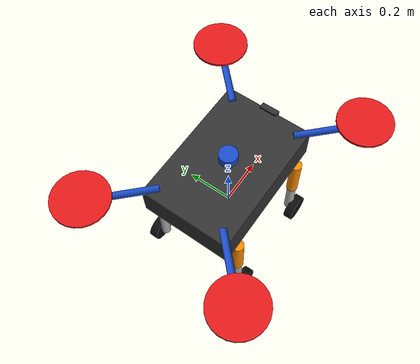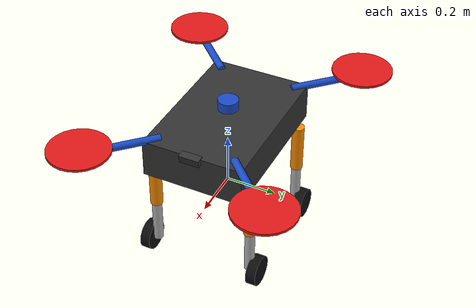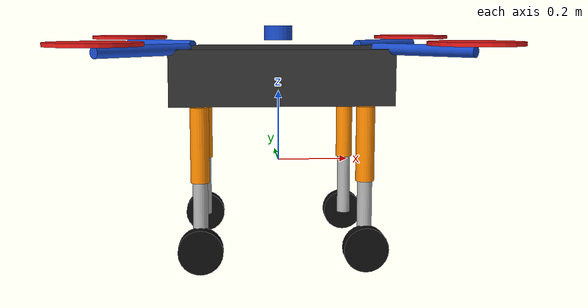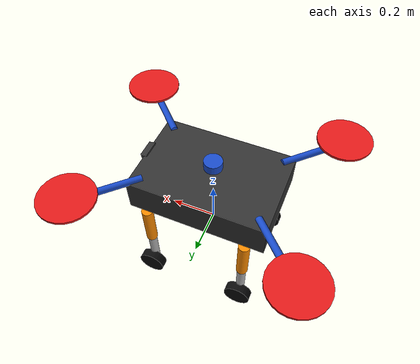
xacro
<?xml version="1.0"?>
<robot xmlns:xacro="http://www.ros.org/wiki/xacro" name="aeroterrabot">

  <!-- ===================== PROPERTIES ===================== -->
  <xacro:property name="chassis_mass" value="12.0"/>
  <xacro:property name="chassis_length" value="0.6"/>
  <xacro:property name="chassis_width" value="0.4"/>
  <xacro:property name="chassis_height" value="0.15"/>

  <xacro:property name="upper_leg_mass" value="0.8"/>
  <xacro:property name="upper_leg_length" value="0.20"/>
  <xacro:property name="upper_leg_radius" value="0.025"/>

  <xacro:property name="lower_leg_mass" value="0.6"/>
  <xacro:property name="lower_leg_length" value="0.18"/>
  <xacro:property name="lower_leg_radius" value="0.02"/>

  <xacro:property name="wheel_mass" value="0.5"/>
  <xacro:property name="wheel_radius" value="0.06"/>
  <xacro:property name="wheel_width" value="0.04"/>

  <xacro:property name="arm_mass" value="0.4"/>
  <xacro:property name="arm_length" value="0.30"/>
  <xacro:property name="arm_radius" value="0.015"/>

  <xacro:property name="rotor_mass" value="0.15"/>
  <xacro:property name="rotor_radius" value="0.12"/>
  <xacro:property name="rotor_thickness" value="0.01"/>

  <!-- ===================== MATERIALS ===================== -->
  <material name="dark_grey">
    <color rgba="0.2 0.2 0.2 1.0"/>
  </material>
  <material name="orange">
    <color rgba="1.0 0.55 0.0 1.0"/>
  </material>
  <material name="light_grey">
    <color rgba="0.7 0.7 0.7 1.0"/>
  </material>
  <material name="blue">
    <color rgba="0.1 0.3 0.8 1.0"/>
  </material>
  <material name="black">
    <color rgba="0.05 0.05 0.05 1.0"/>
  </material>
  <material name="red">
    <color rgba="0.9 0.1 0.1 1.0"/>
  </material>

  <!-- ===================== INERTIA MACROS ===================== -->
  <xacro:macro name="box_inertia" params="m x y z">
    <inertial>
      <mass value="${m}"/>
      <inertia ixx="${(m/12.0)*(y*y+z*z)}" ixy="0" ixz="0"
               iyy="${(m/12.0)*(x*x+z*z)}" iyz="0"
               izz="${(m/12.0)*(x*x+y*y)}"/>
    </inertial>
  </xacro:macro>

  <xacro:macro name="cylinder_inertia" params="m r h">
    <inertial>
      <mass value="${m}"/>
      <inertia ixx="${(m/12.0)*(3*r*r+h*h)}" ixy="0" ixz="0"
               iyy="${(m/12.0)*(3*r*r+h*h)}" iyz="0"
               izz="${(m/2.0)*(r*r)}"/>
    </inertial>
  </xacro:macro>

  <xacro:macro name="sphere_inertia" params="m r">
    <inertial>
      <mass value="${m}"/>
      <inertia ixx="${(2.0/5.0)*m*r*r}" ixy="0" ixz="0"
               iyy="${(2.0/5.0)*m*r*r}" iyz="0"
               izz="${(2.0/5.0)*m*r*r}"/>
    </inertial>
  </xacro:macro>

  <!-- ===================== BASE LINK ===================== -->
  <link name="base_footprint"/>

  <link name="base_link">
    <visual>
      <geometry>
        <box size="${chassis_length} ${chassis_width} ${chassis_height}"/>
      </geometry>
      <material name="dark_grey"/>
    </visual>
    <collision>
      <geometry>
        <box size="${chassis_length} ${chassis_width} ${chassis_height}"/>
      </geometry>
    </collision>
    <xacro:box_inertia m="${chassis_mass}" x="${chassis_length}" y="${chassis_width}" z="${chassis_height}"/>
  </link>

  <joint name="base_footprint_joint" type="fixed">
    <parent link="base_footprint"/>
    <child link="base_link"/>
    <origin xyz="0 0 0.25" rpy="0 0 0"/>
  </joint>

  <!-- ===================== LEG + WHEEL MACRO ===================== -->
  <xacro:macro name="leg_wheel_module" params="prefix x_offset y_offset y_sign">
    <!-- Upper Leg -->
    <link name="${prefix}_upper_leg_link">
      <visual>
        <origin xyz="0 0 ${-upper_leg_length/2.0}" rpy="0 0 0"/>
        <geometry>
          <cylinder radius="${upper_leg_radius}" length="${upper_leg_length}"/>
        </geometry>
        <material name="orange"/>
      </visual>
      <collision>
        <origin xyz="0 0 ${-upper_leg_length/2.0}" rpy="0 0 0"/>
        <geometry>
          <cylinder radius="${upper_leg_radius}" length="${upper_leg_length}"/>
        </geometry>
      </collision>
      <xacro:cylinder_inertia m="${upper_leg_mass}" r="${upper_leg_radius}" h="${upper_leg_length}"/>
    </link>

    <joint name="${prefix}_upper_leg_joint" type="revolute">
      <parent link="base_link"/>
      <child link="${prefix}_upper_leg_link"/>
      <origin xyz="${x_offset} ${y_offset} ${-chassis_height/2.0}" rpy="0 0 0"/>
      <axis xyz="0 1 0"/>
      <limit lower="-1.57" upper="1.57" effort="50.0" velocity="2.0"/>
      <dynamics damping="0.5" friction="0.3"/>
    </joint>

    <!-- Lower Leg -->
    <link name="${prefix}_lower_leg_link">
      <visual>
        <origin xyz="0 0 ${-lower_leg_length/2.0}" rpy="0 0 0"/>
        <geometry>
          <cylinder radius="${lower_leg_radius}" length="${lower_leg_length}"/>
        </geometry>
        <material name="light_grey"/>
      </visual>
      <collision>
        <origin xyz="0 0 ${-lower_leg_length/2.0}" rpy="0 0 0"/>
        <geometry>
          <cylinder radius="${lower_leg_radius}" length="${lower_leg_length}"/>
        </geometry>
      </collision>
      <xacro:cylinder_inertia m="${lower_leg_mass}" r="${lower_leg_radius}" h="${lower_leg_length}"/>
    </link>

    <joint name="${prefix}_lower_leg_joint" type="revolute">
      <parent link="${prefix}_upper_leg_link"/>
      <child link="${prefix}_lower_leg_link"/>
      <origin xyz="0 0 ${-upper_leg_length}" rpy="0 0 0"/>
      <axis xyz="0 1 0"/>
      <limit lower="-2.35" upper="0.0" effort="40.0" velocity="2.0"/>
      <dynamics damping="0.3" friction="0.2"/>
    </joint>

    <!-- Wheel -->
    <link name="${prefix}_wheel_link">
      <visual>
        <geometry>
          <cylinder radius="${wheel_radius}" length="${wheel_width}"/>
        </geometry>
        <material name="black"/>
      </visual>
      <collision>
        <geometry>
          <cylinder radius="${wheel_radius}" length="${wheel_width}"/>
        </geometry>
      </collision>
      <xacro:cylinder_inertia m="${wheel_mass}" r="${wheel_radius}" h="${wheel_width}"/>
    </link>

    <joint name="${prefix}_wheel_joint" type="continuous">
      <parent link="${prefix}_lower_leg_link"/>
      <child link="${prefix}_wheel_link"/>
      <origin xyz="0 ${y_sign * 0.03} ${-lower_leg_length}" rpy="${-pi/2.0} 0 0"/>
      <axis xyz="0 0 1"/>
      <dynamics damping="0.1" friction="0.05"/>
    </joint>
  </xacro:macro>

  <!-- Instantiate 4 leg-wheel modules -->
  <xacro:leg_wheel_module prefix="fl" x_offset="${chassis_length/2.0 - 0.08}" y_offset="${chassis_width/2.0}"  y_sign="1"/>
  <xacro:leg_wheel_module prefix="fr" x_offset="${chassis_length/2.0 - 0.08}" y_offset="${-chassis_width/2.0}" y_sign="-1"/>
  <xacro:leg_wheel_module prefix="rl" x_offset="${-chassis_length/2.0 + 0.08}" y_offset="${chassis_width/2.0}"  y_sign="1"/>
  <xacro:leg_wheel_module prefix="rr" x_offset="${-chassis_length/2.0 + 0.08}" y_offset="${-chassis_width/2.0}" y_sign="-1"/>

  <!-- ===================== QUADROTOR ARM + ROTOR MACRO ===================== -->
  <xacro:macro name="rotor_arm_module" params="prefix rotor_id x_offset y_offset yaw_offset">
    <!-- Folding Arm -->
    <link name="${prefix}_arm_link">
      <visual>
        <origin xyz="${arm_length/2.0} 0 0" rpy="0 ${pi/2.0} 0"/>
        <geometry>
          <cylinder radius="${arm_radius}" length="${arm_length}"/>
        </geometry>
        <material name="blue"/>
      </visual>
      <collision>
        <origin xyz="${arm_length/2.0} 0 0" rpy="0 ${pi/2.0} 0"/>
        <geometry>
          <cylinder radius="${arm_radius}" length="${arm_length}"/>
        </geometry>
      </collision>
      <xacro:cylinder_inertia m="${arm_mass}" r="${arm_radius}" h="${arm_length}"/>
    </link>

    <joint name="${prefix}_arm_joint" type="revolute">
      <parent link="base_link"/>
      <child link="${prefix}_arm_link"/>
      <origin xyz="${x_offset} ${y_offset} ${chassis_height/2.0}" rpy="0 0 ${yaw_offset}"/>
      <axis xyz="0 0 1"/>
      <limit lower="0.0" upper="1.57" effort="30.0" velocity="1.5"/>
      <dynamics damping="0.3" friction="0.1"/>
    </joint>

    <!-- Rotor -->
    <link name="rotor_${rotor_id}_link">
      <visual>
        <geometry>
          <cylinder radius="${rotor_radius}" length="${rotor_thickness}"/>
        </geometry>
        <material name="red"/>
      </visual>
      <collision>
        <geometry>
          <cylinder radius="${rotor_radius}" length="${rotor_thickness}"/>
        </geometry>
      </collision>
      <xacro:cylinder_inertia m="${rotor_mass}" r="${rotor_radius}" h="${rotor_thickness}"/>
    </link>

    <joint name="rotor_${rotor_id}_joint" type="continuous">
      <parent link="${prefix}_arm_link"/>
      <child link="rotor_${rotor_id}_link"/>
      <origin xyz="${arm_length} 0 ${rotor_thickness + 0.01}" rpy="0 0 0"/>
      <axis xyz="0 0 1"/>
      <dynamics damping="0.01" friction="0.005"/>
    </joint>
  </xacro:macro>

  <!-- Instantiate 4 rotor arm modules -->
  <xacro:rotor_arm_module prefix="front_left"  rotor_id="1" x_offset="${chassis_length/2.0 - 0.05}" y_offset="${chassis_width/2.0 - 0.05}"  yaw_offset="0.785"/>
  <xacro:rotor_arm_module prefix="front_right" rotor_id="2" x_offset="${chassis_length/2.0 - 0.05}" y_offset="${-chassis_width/2.0 + 0.05}" yaw_offset="-0.785"/>
  <xacro:rotor_arm_module prefix="rear_left"   rotor_id="3" x_offset="${-chassis_length/2.0 + 0.05}" y_offset="${chassis_width/2.0 - 0.05}"  yaw_offset="2.356"/>
  <xacro:rotor_arm_module prefix="rear_right"  rotor_id="4" x_offset="${-chassis_length/2.0 + 0.05}" y_offset="${-chassis_width/2.0 + 0.05}" yaw_offset="-2.356"/>

  <!-- ===================== SENSORS ===================== -->

  <!-- LiDAR -->
  <link name="lidar_link">
    <visual>
      <geometry>
        <cylinder radius="0.04" length="0.04"/>
      </geometry>
      <material name="blue"/>
    </visual>
    <collision>
      <geometry>
        <cylinder radius="0.04" length="0.04"/>
      </geometry>
    </collision>
    <xacro:cylinder_inertia m="0.2" r="0.04" h="0.04"/>
  </link>

  <joint name="lidar_joint" type="fixed">
    <parent link="base_link"/>
    <child link="lidar_link"/>
    <origin xyz="0 0 ${chassis_height/2.0 + 0.04}" rpy="0 0 0"/>
  </joint>

  <!-- Camera -->
  <link name="camera_link">
    <visual>
      <origin xyz="0 0 0" rpy="0 0 0"/>
      <geometry>
        <box size="0.03 0.08 0.03"/>
      </geometry>
      <material name="dark_grey"/>
    </visual>
    <collision>
      <geometry>
        <box size="0.03 0.08 0.03"/>
      </geometry>
    </collision>
    <xacro:box_inertia m="0.1" x="0.03" y="0.08" z="0.03"/>
  </link>

  <joint name="camera_joint" type="fixed">
    <parent link="base_link"/>
    <child link="camera_link"/>
    <origin xyz="${chassis_length/2.0} 0 ${chassis_height/2.0 - 0.01}" rpy="0 0.18 0"/>
  </joint>

  <link name="camera_optical_link"/>
  <joint name="camera_optical_joint" type="fixed">
    <parent link="camera_link"/>
    <child link="camera_optical_link"/>
    <origin xyz="0 0 0" rpy="${-pi/2.0} 0 ${-pi/2.0}"/>
  </joint>

  <!-- IMU -->
  <link name="imu_link">
    <visual>
      <geometry>
        <box size="0.02 0.02 0.01"/>
      </geometry>
      <material name="orange"/>
    </visual>
    <collision>
      <geometry>
        <box size="0.02 0.02 0.01"/>
      </geometry>
    </collision>
    <xacro:box_inertia m="0.05" x="0.02" y="0.02" z="0.01"/>
  </link>

  <joint name="imu_joint" type="fixed">
    <parent link="base_link"/>
    <child link="imu_link"/>
    <origin xyz="0 0 0" rpy="0 0 0"/>
  </joint>

  <!-- ===================== GAZEBO SENSOR PLUGINS ===================== -->
  <gazebo reference="lidar_link">
    <sensor type="ray" name="lidar_sensor">
      <pose>0 0 0 0 0 0</pose>
      <always_on>true</always_on>
      <update_rate>10</update_rate>
      <visualize>true</visualize>
      <ray>
        <scan>
          <horizontal>
            <samples>360</samples>
            <resolution>1</resolution>
            <min_angle>-3.14159</min_angle>
            <max_angle>3.14159</max_angle>
          </horizontal>
        </scan>
        <range>
          <min>0.12</min>
          <max>12.0</max>
          <resolution>0.01</resolution>
        </range>
        <noise>
          <type>gaussian</type>
          <mean>0.0</mean>
          <stddev>0.01</stddev>
        </noise>
      </ray>
      <plugin name="gazebo_ros_lidar" filename="libgazebo_ros_ray_sensor.so">
        <ros>
          <remapping>~/out:=/scan</remapping>
        </ros>
        <output_type>sensor_msgs/LaserScan</output_type>
        <frame_name>lidar_link</frame_name>
      </plugin>
    </sensor>
  </gazebo>

  <gazebo reference="camera_link">
    <sensor type="camera" name="camera_sensor">
      <always_on>true</always_on>
      <update_rate>30</update_rate>
      <visualize>true</visualize>
      <camera>
        <horizontal_fov>1.3962634</horizontal_fov>
        <image>
          <width>640</width>
          <height>480</height>
          <format>R8G8B8</format>
        </image>
        <clip>
          <near>0.02</near>
          <far>100.0</far>
        </clip>
        <noise>
          <type>gaussian</type>
          <mean>0.0</mean>
          <stddev>0.007</stddev>
        </noise>
      </camera>
      <plugin name="gazebo_ros_camera" filename="libgazebo_ros_camera.so">
        <ros>
          <remapping>~/image_raw:=/camera/image_raw</remapping>
          <remapping>~/camera_info:=/camera/camera_info</remapping>
        </ros>
        <camera_name>camera</camera_name>
        <frame_name>camera_optical_link</frame_name>
      </plugin>
    </sensor>
  </gazebo>

  <gazebo reference="imu_link">
    <sensor type="imu" name="imu_sensor">
      <always_on>true</always_on>
      <update_rate>100</update_rate>
      <imu>
        <angular_velocity>
          <x><noise type="gaussian"><mean>0.0</mean><stddev>0.0002</stddev></noise></x>
          <y><noise type="gaussian"><mean>0.0</mean><stddev>0.0002</stddev></noise></y>
          <z><noise type="gaussian"><mean>0.0</mean><stddev>0.0002</stddev></noise></z>
        </angular_velocity>
        <linear_acceleration>
          <x><noise type="gaussian"><mean>0.0</mean><stddev>0.017</stddev></noise></x>
          <y><noise type="gaussian"><mean>0.0</mean><stddev>0.017</stddev></noise></y>
          <z><noise type="gaussian"><mean>0.0</mean><stddev>0.017</stddev></noise></z>
        </linear_acceleration>
      </imu>
      <plugin name="gazebo_ros_imu" filename="libgazebo_ros_imu_sensor.so">
        <ros>
          <remapping>~/out:=/imu/data</remapping>
        </ros>
        <frame_name>imu_link</frame_name>
        <initial_orientation_as_reference>false</initial_orientation_as_reference>
      </plugin>
    </sensor>
  </gazebo>

  <!-- Gazebo friction for wheels -->
  <xacro:macro name="wheel_gazebo" params="prefix">
    <gazebo reference="${prefix}_wheel_link">
      <mu1>1.5</mu1>
      <mu2>1.5</mu2>
      <kp>1000000.0</kp>
      <kd>100.0</kd>
      <material>Gazebo/DarkGrey</material>
    </gazebo>
  </xacro:macro>

  <xacro:wheel_gazebo prefix="fl"/>
  <xacro:wheel_gazebo prefix="fr"/>
  <xacro:wheel_gazebo prefix="rl"/>
  <xacro:wheel_gazebo prefix="rr"/>

  <!-- ===================== ROS2_CONTROL HARDWARE INTERFACE ===================== -->
  <ros2_control name="AeroTerraBotSystem" type="system">
    <hardware>
      <plugin>gazebo_ros2_control/GazeboSystem</plugin>
    </hardware>

    <!-- Wheel Joints - Velocity Interface -->
    <joint name="fl_wheel_joint">
      <command_interface name="velocity">
        <param name="min">-20.0</param>
        <param name="max">20.0</param>
      </command_interface>
      <state_interface name="position"/>
      <state_interface name="velocity"/>
    </joint>
    <joint name="fr_wheel_joint">
      <command_interface name="velocity">
        <param name="min">-20.0</param>
        <param name="max">20.0</param>
      </command_interface>
      <state_interface name="position"/>
      <state_interface name="velocity"/>
    </joint>
    <joint name="rl_wheel_joint">
      <command_interface name="velocity">
        <param name="min">-20.0</param>
        <param name="max">20.0</param>
      </command_interface>
      <state_interface name="position"/>
      <state_interface name="velocity"/>
    </joint>
    <joint name="rr_wheel_joint">
      <command_interface name="velocity">
        <param name="min">-20.0</param>
        <param name="max">20.0</param>
      </command_interface>
      <state_interface name="position"/>
      <state_interface name="velocity"/>
    </joint>

    <!-- Upper Leg Joints - Position Interface -->
    <joint name="fl_upper_leg_joint">
      <command_interface name="position">
        <param name="min">-1.57</param>
        <param name="max">1.57</param>
      </command_interface>
      <state_interface name="position"/>
      <state_interface name="velocity"/>
    </joint>
    <joint name="fr_upper_leg_joint">
      <command_interface name="position">
        <param name="min">-1.57</param>
        <param name="max">1.57</param>
      </command_interface>
      <state_interface name="position"/>
      <state_interface name="velocity"/>
    </joint>
    <joint name="rl_upper_leg_joint">
      <command_interface name="position">
        <param name="min">-1.57</param>
        <param name="max">1.57</param>
      </command_interface>
      <state_interface name="position"/>
      <state_interface name="velocity"/>
    </joint>
    <joint name="rr_upper_leg_joint">
      <command_interface name="position">
        <param name="min">-1.57</param>
        <param name="max">1.57</param>
      </command_interface>
      <state_interface name="position"/>
      <state_interface name="velocity"/>
    </joint>

    <!-- Lower Leg Joints - Position Interface -->
    <joint name="fl_lower_leg_joint">
      <command_interface name="position">
        <param name="min">-2.35</param>
        <param name="max">0.0</param>
      </command_interface>
      <state_interface name="position"/>
      <state_interface name="velocity"/>
    </joint>
    <joint name="fr_lower_leg_joint">
      <command_interface name="position">
        <param name="min">-2.35</param>
        <param name="max">0.0</param>
      </command_interface>
      <state_interface name="position"/>
      <state_interface name="velocity"/>
    </joint>
    <joint name="rl_lower_leg_joint">
      <command_interface name="position">
        <param name="min">-2.35</param>
        <param name="max">0.0</param>
      </command_interface>
      <state_interface name="position"/>
      <state_interface name="velocity"/>
    </joint>
    <joint name="rr_lower_leg_joint">
      <command_interface name="position">
        <param name="min">-2.35</param>
        <param name="max">0.0</param>
      </command_interface>
      <state_interface name="position"/>
      <state_interface name="velocity"/>
    </joint>

    <!-- Arm Transform Joints - Position Interface -->
    <joint name="front_left_arm_joint">
      <command_interface name="position">
        <param name="min">0.0</param>
        <param name="max">1.57</param>
      </command_interface>
      <state_interface name="position"/>
      <state_interface name="velocity"/>
    </joint>
    <joint name="front_right_arm_joint">
      <command_interface name="position">
        <param name="min">0.0</param>
        <param name="max">1.57</param>
      </command_interface>
      <state_interface name="position"/>
      <state_interface name="velocity"/>
    </joint>
    <joint name="rear_left_arm_joint">
      <command_interface name="position">
        <param name="min">0.0</param>
        <param name="max">1.57</param>
      </command_interface>
      <state_interface name="position"/>
      <state_interface name="velocity"/>
    </joint>
    <joint name="rear_right_arm_joint">
      <command_interface name="position">
        <param name="min">0.0</param>
        <param name="max">1.57</param>
      </command_interface>
      <state_interface name="position"/>
      <state_interface name="velocity"/>
    </joint>

    <!-- Rotor Joints - Velocity Interface -->
    <joint name="rotor_1_joint">
      <command_interface name="velocity">
        <param name="min">-1000.0</param>
        <param name="max">1000.0</param>
      </command_interface>
      <state_interface name="position"/>
      <state_interface name="velocity"/>
    </joint>
    <joint name="rotor_2_joint">
      <command_interface name="velocity">
        <param name="min">-1000.0</param>
        <param name="max">1000.0</param>
      </command_interface>
      <state_interface name="position"/>
      <state_interface name="velocity"/>
    </joint>
    <joint name="rotor_3_joint">
      <command_interface name="velocity">
        <param name="min">-1000.0</param>
        <param name="max">1000.0</param>
      </command_interface>
      <state_interface name="position"/>
      <state_interface name="velocity"/>
    </joint>
    <joint name="rotor_4_joint">
      <command_interface name="velocity">
        <param name="min">-1000.0</param>
        <param name="max">1000.0</param>
      </command_interface>
      <state_interface name="position"/>
      <state_interface name="velocity"/>
    </joint>
  </ros2_control>

  <!-- Gazebo ros2_control plugin -->
  <gazebo>
    <plugin filename="libgazebo_ros2_control.so" name="gazebo_ros2_control">
      <robot_param>robot_description</robot_param>
      <robot_param_node>robot_state_publisher</robot_param_node>
      <parameters>$(find aeroterrabot_control)/config/controllers.yaml</parameters>
    </plugin>
  </gazebo>

</robot>
